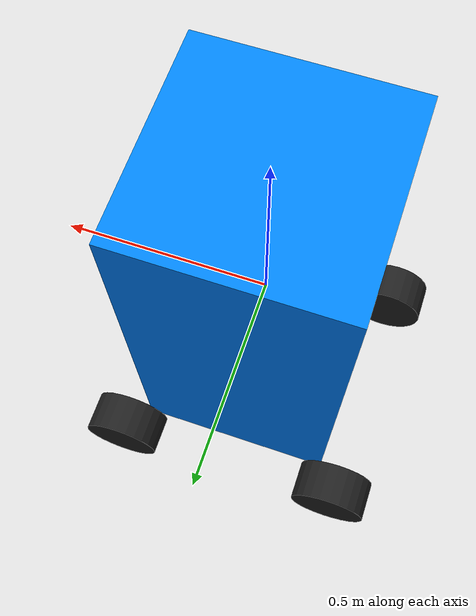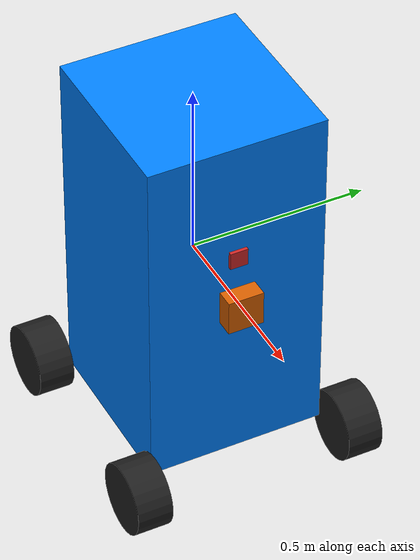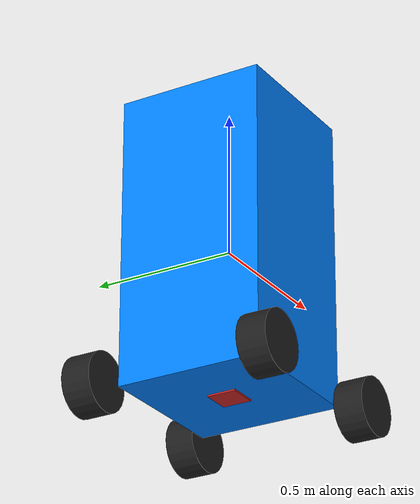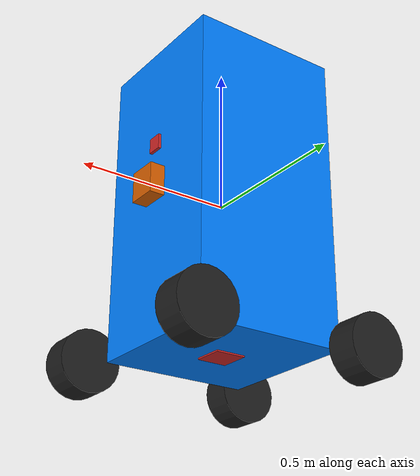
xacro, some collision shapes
<?xml version='1.0'?>

<robot name="myrobot" xmlns:xacro="http://www.ros.org/wiki/xacro">

  <xacro:property name="cameraSize" value="0.05"/>
  <xacro:property name="cameraMass" value="0.1"/>
  <xacro:property name="camera_link" value="0.05" />

  <xacro:include filename="$(find myrobot_description)/urdf/device.xacro"/>
  <xacro:include filename="$(find myrobot_description)/urdf/base_link.xacro"/>
  <xacro:include filename="$(find myrobot_description)/urdf/upper_wheel.xacro"/>
  <xacro:include filename="$(find myrobot_description)/urdf/lower_wheel.xacro"/>
  <xacro:include filename="$(find myrobot_description)/urdf/sensors.xacro"/>

</robot>

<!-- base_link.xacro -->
<robot name="my_robot" xmlns:xacro="http://ros.org/wiki/xacro">
  <!-- Base Link -->
  <link name="base_link">
    <visual>
      <origin xyz="0 0 0" rpy="0 0 0" />
      <geometry>
        <box size="0.5 0.5 1"/>
      </geometry>
      <material name="Blue">
         <color rgba="0 0.5 1 1"/>
      </material>
    </visual>
    <!-- Base collision, mass and inertia -->
    <collision>
      <origin xyz="0 0 0" rpy="0 0 0" />
      <geometry>
          <box size="0.5 0.5 1"/>
      </geometry>
    </collision>
    <inertial>
      <mass value="5"/>
      <inertia ixx="0.7" ixy="0.0" ixz="0.0" iyy="0.7" iyz="0.0" izz="0.25"/>
    </inertial>

  </link>

  <gazebo reference="base_link">
    <material>Gazebo/Blue</material>
    <pose>0 0 0.1 0 0 0</pose>
  </gazebo>

</robot>

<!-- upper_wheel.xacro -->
<robot name="my_robot" xmlns:xacro="http://ros.org/wiki/xacro">
 <!-- upper Right Wheel -->
  <link name="upper_right_wheel">
    <visual>
      <origin xyz="0 0 0" rpy="1.570795 0 0" />
      <geometry>
          <cylinder length="0.1" radius="0.1" />
      </geometry>
      <material name="black"/>
    </visual>
    <!-- upper Right Wheel collision, mass and inertia -->
    <collision>
      <origin xyz="0 -0.01 0" rpy="1.570795 0 0" />
      <geometry>
          <cylinder length="0.1" radius="0.1" />
      </geometry>
      <mu1>0.1</mu1>
      <mu2>0.1</mu2>
      <kp>500000.0</kp>
      <kd>10.0</kd>
      <minDepth>0.001</minDepth>
      <maxVel>0.1</maxVel>
      <fdir1>1 0 0</fdir1>
    </collision>
    <inertial>
      <mass value="3"/>
      <inertia ixx="0.1" ixy="0.0" ixz="0.0" iyy="0.1" iyz="0.0" izz="0.1"/>
    </inertial>
  </link>
  <gazebo reference="upper_right_wheel">
    <material>Gazebo/Black</material>
  </gazebo>
  <!--upper Right Wheel joint -->
  <joint name="joint_upper_right_wheel" type="continuous">
    <parent link="base_link"/>
    <child link="upper_right_wheel"/>
    <origin xyz="0.3 -0.31 -0.5" rpy="0 0 0" />
    <axis xyz="0 1 0" />
  </joint>

 <!-- upper Left Wheel -->
  <link name="upper_left_wheel">
    <visual>
      <origin xyz="0 0 0" rpy="1.570795 0 0" />
      <geometry>
          <cylinder length="0.1" radius="0.1" />
      </geometry>
      <material name="black"/>
    </visual>
    <!-- upper Left Wheel collision, mass and inertia -->
    <collision>
      <origin xyz="0 0.01 0" rpy="1.570795 0 0" />
      <geometry>
          <cylinder length="0.1" radius="0.1" />
      </geometry>
      <mu1>0.1</mu1>
      <mu2>0.1</mu2>
      <kp>500000.0</kp>
      <kd>10.0</kd>
      <minDepth>0.001</minDepth>
      <maxVel>0.1</maxVel>
      <fdir1>1 0 0</fdir1>
    </collision>
    <inertial>
      <mass value="3"/>
      <inertia ixx="0.1" ixy="0.0" ixz="0.0" iyy="0.1" iyz="0.0" izz="0.1"/>
    </inertial>
  </link>
  <gazebo reference="upper_left_wheel">
    <material>Gazebo/Black</material>
  </gazebo>
  <!-- upper Left Wheel joint -->
  <joint name="joint_upper_left_wheel" type="continuous">
    <parent link="base_link"/>
    <child link="upper_left_wheel"/>
    <origin xyz="0.3 0.31 -0.5" rpy="0 0 0" />
    <axis xyz="0 1 0"/>
  </joint>
</robot>

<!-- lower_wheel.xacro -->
<robot name="my_robot" xmlns:xacro="http://ros.org/wiki/xacro">

  <!-- lower Right Wheel -->
  <link name="lower_right_wheel">
    <visual>
      <origin xyz="0 0 0" rpy="1.570795 0 0" />
      <geometry>
        <cylinder length="0.1" radius="0.1" />
      </geometry>
      <material name="black"/>
    </visual>
    <!-- lower Right Wheel collision, mass and inertia -->
    <collision>
      <origin xyz="0 0 0" rpy="1.570795 0 0" />
      <geometry>
          <cylinder length="0.1" radius="0.1" />
      </geometry>
      <mu1>0.1</mu1>
      <mu2>0.1</mu2>
      <kp>500000.0</kp>
      <kd>10.0</kd>
      <minDepth>0.001</minDepth>
      <maxVel>0.1</maxVel>
      <fdir1>1 0 0</fdir1>
    </collision>
    <inertial>
      <mass value="3"/>
      <inertia ixx="0.1" ixy="0.0" ixz="0.0" iyy="0.1" iyz="0.0" izz="0.1"/>
    </inertial>
  </link>
  <gazebo reference="lower_right_wheel">
    <material>Gazebo/Black</material>
  </gazebo>
  <!--lower Right Wheel joint -->
  <joint name="joint_lower_right_wheel" type="continuous">
    <parent link="base_link"/>
    <child link="lower_right_wheel"/>
    <origin xyz="-0.3 -0.31 -0.5" rpy="0 0 0" />
    <axis xyz="0 1 0" />
  </joint>

 <!-- lower Left Wheel -->
  <link name="lower_left_wheel">
    <visual>
      <origin xyz="0 0 0" rpy="1.570795 0 0" />
      <geometry>
        <cylinder length="0.1" radius="0.1" />
      </geometry>
      <material name="black"/>
    </visual>
    <!-- lower Left Wheel collision, mass and inertia -->
    <collision>
      <origin xyz="0 0 0" rpy="1.570795 0 0" />
      <geometry>
        <cylinder length="0.1" radius="0.1" />
      </geometry>
      <mu1>0.1</mu1>
      <mu2>0.1</mu2>
      <kp>500000.0</kp>
      <kd>10.0</kd>
      <minDepth>0.001</minDepth>
      <maxVel>0.1</maxVel>
      <fdir1>1 0 0</fdir1>
    </collision>
    <inertial>
      <mass value="3"/>
      <inertia ixx="0.1" ixy="0.0" ixz="0.0" iyy="0.1" iyz="0.0" izz="0.1"/>
    </inertial>
  </link>
  <gazebo reference="lower_left_wheel">
    <material>Gazebo/Black</material>
  </gazebo>

  <!-- lower Left Wheel joint -->
  <joint name="joint_lower_left_wheel" type="continuous">
    <parent link="base_link"/>
    <child link="lower_left_wheel"/>
    <origin xyz="-0.3 0.31 -0.5" rpy="0 0 0" />
    <axis xyz="0 1 0"/>
  </joint>

</robot>

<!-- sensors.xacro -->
<robot name="my_robot" xmlns:xacro="http://ros.org/wiki/xacro">
  <!-- hokuyo model -->

  <joint name="hokuyo_joint" type="fixed">
    <axis xyz="0 1 0" />
    <origin xyz="0.25 0 0" rpy="0 0 0"/>
    <parent link="base_link"/>
    <child link="sensor_laser"/>
  </joint>

  <link name="sensor_laser">
    <collision>
      <origin xyz="0 0 0" rpy="0 0 0"/>
      <geometry>
    <box size="0.1 0.1 0.1"/>
      </geometry>
    </collision>

    <visual>
      <origin xyz="0 0 0" rpy="0 0 0"/>
      <geometry>
        <mesh filename="package://myrobot_description/meshes/sensors/hokuyo.dae"/>
      </geometry>
    </visual>

    <inertial>
      <mass value="1e-9" />
      <origin xyz="0 0 0" rpy="0 0 0"/>
      <inertia ixx="1e-9" ixy="0" ixz="0" iyy="1e-9" iyz="0" izz="1e-9" />
    </inertial>
  </link>

  <!-- Camera model -->
  <joint name="camera_joint" type="fixed">
    <axis xyz="0 1 0" />
    <origin xyz="0.235 0 0.15" rpy="0 0 0"/>
    <parent link="base_link"/>
    <child link="camera_link"/>
  </joint>
  <link name="camera_link">
    <collision>
      <origin xyz="0 0 0" rpy="0 0 0"/>
      <geometry>
    <box size="0.05 0.05 0.05"/>
      </geometry>
    </collision>

    <visual>
      <origin xyz="0 0 0" rpy="0 0 0"/>
      <geometry>
        <box size="0.05 0.05 0.05"/>
      </geometry>

      <material name="red"/>
    </visual>

    <inertial>
      <mass value="1e-9" />
      <origin xyz="0 0 0" rpy="0 0 0"/>
      <inertia ixx="1e-9" ixy="0" ixz="0" iyy="1e-9" iyz="0" izz="1e-9" />
    </inertial>
  </link>

  <!-- IMU Link is the standard mounting position for the UM6 IMU.-->
  <!-- Can be modified with environment variables in /etc/ros/setup.bash -->
 <link name="imu_link">
    <collision>
      <origin xyz="0 0 0" rpy="0 0 0"/>
      <geometry>
    <box size="0.1 0.1 0.01"/>
      </geometry>
    </collision>
      <visual>
      <origin xyz="0 0 0" rpy="0 0 0"/>
      <geometry>
        <box size="0.1 0.1 0.01"/>
      </geometry>
      <material name="red"/>
      </visual>
    <inertial>
      <mass value="1e-5" />
      <origin xyz="0 0 0" rpy="0 0 0"/>
      <inertia ixx="1e-6" ixy="0" ixz="0" iyy="1e-6" iyz="0" izz="1e-6" />
    </inertial>
  </link>
  <joint name="imu_joint" type="fixed">
    <origin xyz="0 0 -0.5" rpy="0 0 0" />
    <parent link="base_link" />
    <child link="imu_link" />
  </joint>

</robot>
